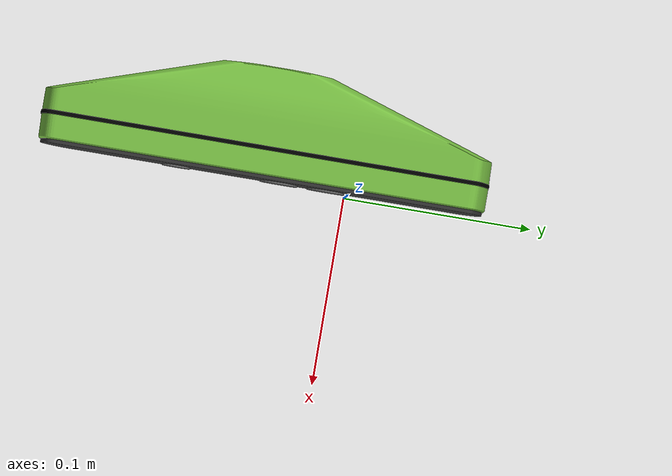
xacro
<?xml version="1.0"?>
<!-- |    This document was autogenerated by xacro from /opt/pickit/share/camera_description/urdf/camera.urdf.xacro      | -->
<!-- |    EDITING THIS FILE BY HAND IS NOT RECOMMENDED                                      | -->
<robot name="camera" xmlns:xacro="http://www.ros.org/wiki/xacro">
<link name="CAM_30703_link"/>
<joint name="CAM_30703_depth_frame_joint" type="fixed">
  <parent link="CAM_30703_link"/>
  <child link="CAM_30703_depth_frame"/>
  <origin rpy="0 0 0" xyz="-0.0113 -0.045 0"/>
</joint>
<link name="CAM_30703_depth_frame"/>
<joint name="CAM_30703_rgb_frame_joint" type="fixed">
  <parent link="CAM_30703_link"/>
  <child link="CAM_30703_rgb_frame"/>
  <origin rpy="0 0 0" xyz="-0.0113 -0.045 0"/>
</joint>
<link name="CAM_30703_rgb_frame"/>
<joint name="CAM_30703_depth_optical_frame_joint" type="fixed">
  <parent link="CAM_30703_depth_frame"/>
  <child link="CAM_30703_depth_optical_frame"/>
  <origin rpy="-1.57079632679 0 -1.57079632679" xyz="0 0 0"/>
</joint>
<link name="CAM_30703_depth_optical_frame"/>
<joint name="CAM_30703_rgb_optical_frame_joint" type="fixed">
  <parent link="CAM_30703_rgb_frame"/>
  <child link="CAM_30703_rgb_optical_frame"/>
  <origin rpy="-1.57079632679 0 -1.57079632679" xyz="0 0 0"/>
</joint>
<link name="CAM_30703_rgb_optical_frame"/>
<link name="camera_display_link">
<visual>
<origin rpy="-1.57079632679 0 0" xyz="0 0 0"/>
<geometry>
<mesh filename="package://camera_description/meshes/camera_display.dae"/>
</geometry>
<material name="grey">
<color rgba="0.2      0.2 0.2 1"/>
</material>
</visual>
</link>
<joint name="camera_display_joint" type="fixed">
<origin rpy="0 0 -1.57079632679" xyz="0 -0.045 0"/>
<parent link="CAM_30703_link"/>
<child link="camera_display_link"/>
</joint><link name="camera_housing_link">
<inertial>
<mass      value="2"/>
<inertia ixx="1e-3" ixy="0" ixz="0" iyy="1e-3" iyz="0" izz="1e-3"/>
</inertial>
<visual>
<origin rpy="-1.57079632679      0 0" xyz="0 0 0"/>
<geometry>
<mesh filename="package://pickit_model/camera_description/meshes/camera_hull.dae"/>
</geometry>
<material name="pickit_green">
<color rgba="0.474509803922 0.756862745098 0.262745098039 1"/>
</material>
</visual>
<collision>
<origin rpy="0 0 0" xyz="0 -0.03 0"/>
<geometry>
<box size="0.25 0.06 0.05"/>
</geometry>
</collision>
<collision>
<origin rpy="0 0 0" xyz="0 0 0.005"/>
<geometry><box size="0.05 0.05 0.05"/>
</geometry>
</collision>
</link>
<joint name="camera_joint" type="fixed">
<origin rpy="0 0 0" xyz="0 -0.002 0"/>
<parent link="camera_display_link"/>
<child link="camera_housing_link"/>
</joint>
<!-- link to show visual black line      in the middle of the camera -->
<link name="camera_rubber_ring_link">
<visual>
<origin rpy="0 0 1.57079632679" xyz="0 0.0005 0.005"/>
<geometry>
<mesh filename="package://pickit_model/camera_description/meshes/camera_display.dae" scale="1.015 1.1 1.06"/>
</geometry>
<material name="black">
<color rgba="0 0 0 1"/>
</material>
</visual></link>
<joint name="camera_rubber_ring_joint" type="fixed">
<origin rpy="+1.57079632679 -1.57079632679 0" xyz="0 -0.015 0"/>
<parent link="camera_housing_link"/>
<child link="camera_rubber_ring_link"/>
</joint>
<link name="lense_3">
<visual>
<geometry>
<cylinder length="0.001" radius="0.0075"/>
</geometry>
<material name="light_gray">
<color rgba="0.4 0.4 0.4 1"/>
</material>
</visual>
</link>
<joint name="camera_lense_3_joint" type="fixed">
<origin rpy="1.57079632679      0 0" xyz="0.045 -0.002 0"/>
<parent link="camera_display_link"/>
<child link="lense_3"/>
</joint>
<link name="lense_1">
<visual>
<geometry>
<cylinder length="0.001" radius="0.01"/>
</geometry>
<material name="light_gray">
<color rgba="0.4 0.4 0.4 1"/>
</material>
</visual>
</link>
<joint name="camera_lense_1_joint" type="fixed">
<origin rpy="1.57079632679 0 0" xyz="-0.01 -0.002 0"/>
<parent link="camera_display_link"/>
<child link="lense_1"/>
</joint>
<link name="lense_2">
<visual>
<geometry>
<cylinder length="0.001" radius="0.01"/>
</geometry>
<material      name="light_gray">
<color rgba="0.4 0.4 0.4 1"/>
</material>
</visual>
</link>
<joint name="camera_lense_2_joint" type="fixed">
<origin rpy="1.57079632679 0 0" xyz="-0.035 -0.002 0"/>
<parent link="camera_display_link"/>
<child link="lense_2"/>
</joint>
<link name="gazebo_optical_frame"/>
<joint name="gazebo_optical_frame_joint" type="fixed">
<origin rpy="0 0 0" xyz="0 -0.045 0"/>
<parent link="CAM_30703_link"/>
<child link="gazebo_optical_frame"/>
</joint>
</robot>
